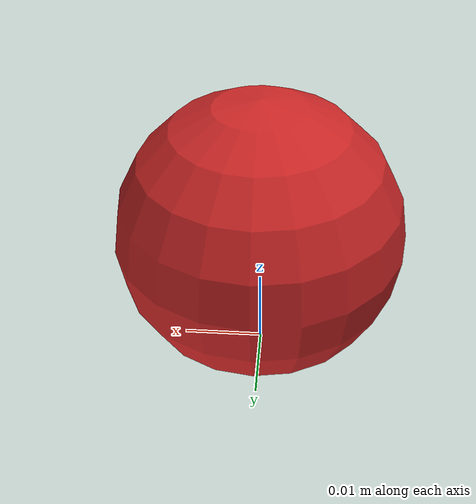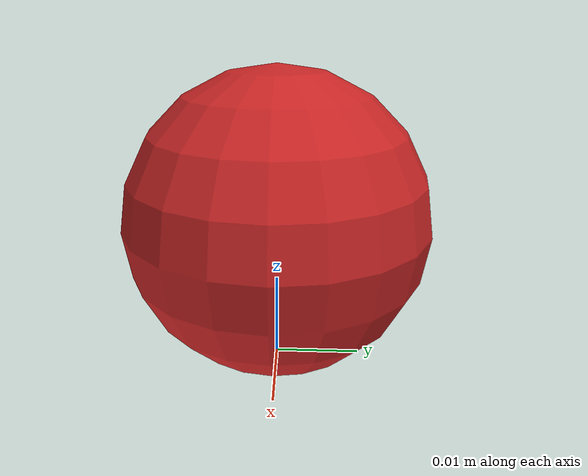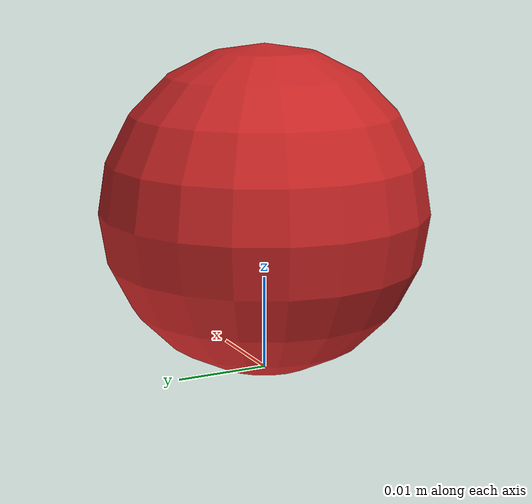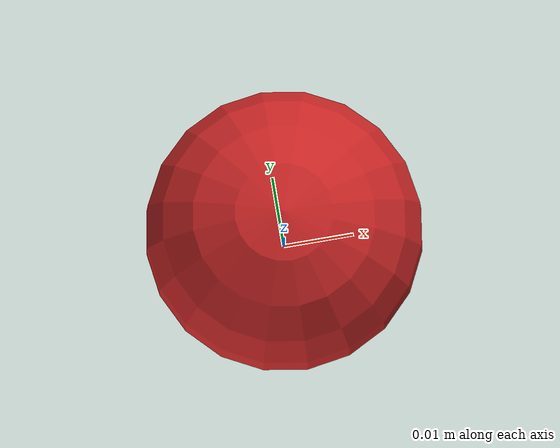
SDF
<?xml version="1.0" ?>

<sdf version="1.4">
  <model name="path_marker">
    <static>true</static>
    <link name="link">
      <pose>0 0 0.0175 0 0 0</pose>
      <inertial>
        <mass>0.1467</mass>
        <inertia>
          <ixx>8.251875e-05</ixx>
          <ixy>0</ixy>
          <ixz>0</ixz>
          <iyy>8.251875e-05</iyy>
          <iyz>0</iyz>
          <izz>8.251875e-05</izz>
        </inertia>
      </inertial>

      <collision name="collision">
        <geometry>
          <sphere>
            <radius>0.0175</radius>
          </sphere>
        </geometry>
      </collision>

      <visual name="visual">
        <geometry>
          <sphere>
            <radius>0.0175</radius>
          </sphere>
        </geometry>
        <material>
          <script>
            <uri>file://media/materials/scripts/gazebo.material</uri>
            <name>Gazebo/Red</name>
          </script>
        </material>
      </visual>

      <!-- approximate rolling friction -->
      <velocity_decay>
        <linear>0.00</linear>
        <angular>0.005</angular>
      </velocity_decay>
    </link>
  </model>
</sdf>
